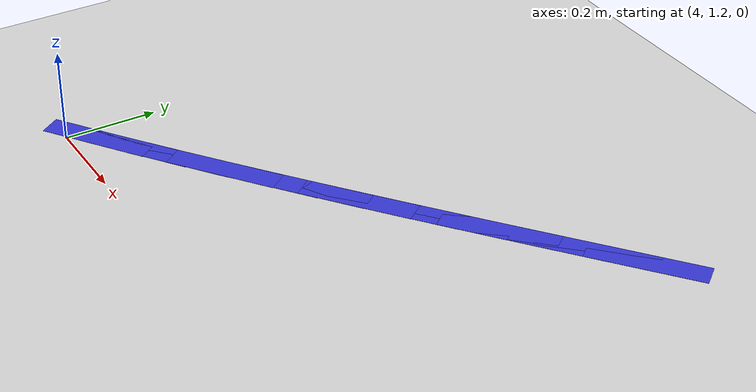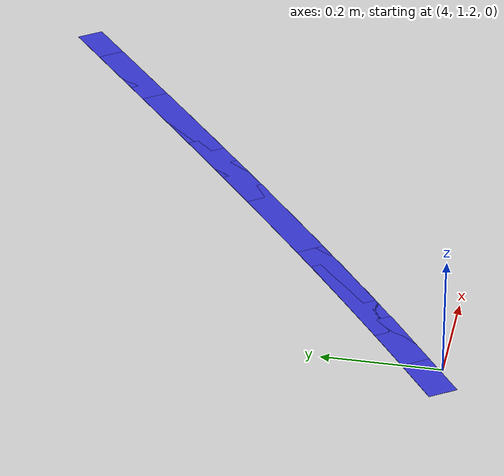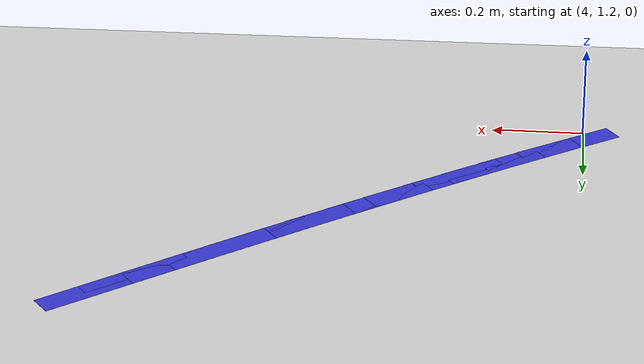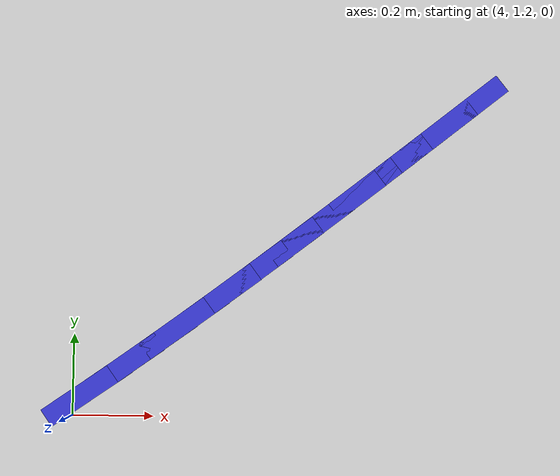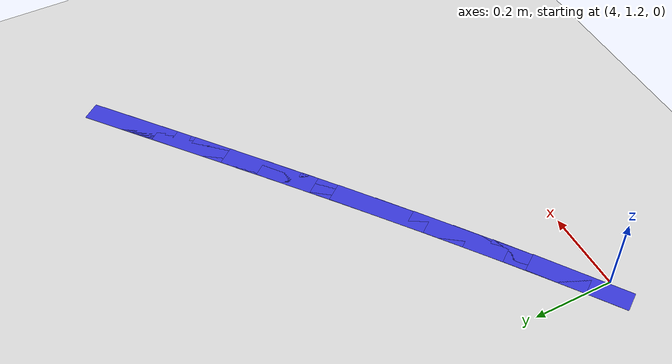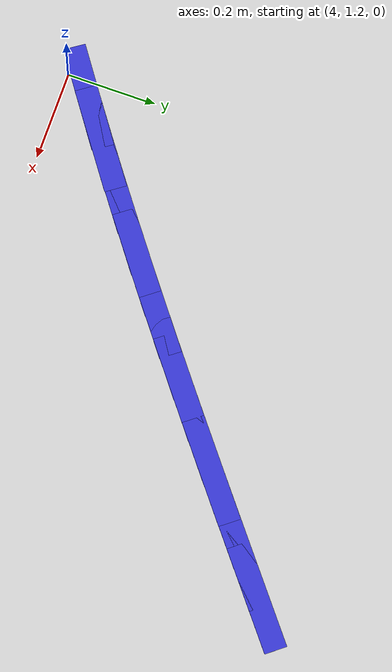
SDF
<sdf version="1.10">
 <world name="empty">
  <model name="ground_plane">
   <static>true</static>
   <link name="link">
    <collision name="collision">
     <geometry><plane><normal>0 0 1</normal><size>100 100</size></plane></geometry>
    </collision>
    <visual name="visual">
     <geometry><plane><normal>0 0 1</normal><size>100 100</size></plane></geometry>
     <material>
      <ambient>0.800000012 0.800000012 0.800000012 1</ambient>
      <diffuse>0.800000012 0.800000012 0.800000012 1</diffuse>
      <specular>0.800000012 0.800000012 0.800000012 1</specular>
     </material>
    </visual>
    <inertial>
     <mass>1</mass>
     <inertia><ixx>1</ixx><ixy>0</ixy><ixz>0</ixz><iyy>1</iyy><iyz>0</iyz><izz>1</izz></inertia>
    </inertial>
   </link>
  </model>
  <model name="unit_box_37">
   <link name="box_link">
    <collision name="box_collision">
     <geometry><box><size>0.000005 0.000005 0.000005</size></box></geometry>
    </collision>
    <visual name="box_visual">
     <geometry><box><size>0.24 0.05 0.0005</size></box></geometry>
     <material>
      <ambient>0.300000012 0.300000012 0.300000012 1</ambient>
      <diffuse>0.2 0.2 0.8 1</diffuse>
      <specular>1 1 1 1</specular>
     </material>
    </visual>
    <pose>4.032901198496547 1.2585275260512485 0 0 0 0.6085190213940487</pose>
   </link>
   <static>false</static>
  </model>
  <model name="unit_box_38">
   <link name="box_link">
    <collision name="box_collision">
     <geometry><box><size>0.000005 0.000005 0.000005</size></box></geometry>
    </collision>
    <visual name="box_visual">
     <geometry><box><size>0.24 0.05 0.0005</size></box></geometry>
     <material>
      <ambient>0.300000012 0.300000012 0.300000012 1</ambient>
      <diffuse>0.2 0.2 0.8 1</diffuse>
      <specular>1 1 1 1</specular>
     </material>
    </visual>
    <pose>4.113113586636696 1.3155697367512484 0 0 0 0.6181631887237502</pose>
   </link>
   <static>false</static>
  </model>
  <model name="unit_box_39">
   <link name="box_link">
    <collision name="box_collision">
     <geometry><box><size>0.000005 0.000005 0.000005</size></box></geometry>
    </collision>
    <visual name="box_visual">
     <geometry><box><size>0.24 0.05 0.0005</size></box></geometry>
     <material>
      <ambient>0.300000012 0.300000012 0.300000012 1</ambient>
      <diffuse>0.2 0.2 0.8 1</diffuse>
      <specular>1 1 1 1</specular>
     </material>
    </visual>
    <pose>4.192614853771879 1.3731808442552245 0 0 0 0.6270829814099572</pose>
   </link>
   <static>false</static>
  </model>
  <model name="unit_box_40">
   <link name="box_link">
    <collision name="box_collision">
     <geometry><box><size>0.000005 0.000005 0.000005</size></box></geometry>
    </collision>
    <visual name="box_visual">
     <geometry><box><size>0.24 0.05 0.0005</size></box></geometry>
     <material>
      <ambient>0.300000012 0.300000012 0.300000012 1</ambient>
      <diffuse>0.2 0.2 0.8 1</diffuse>
      <specular>1 1 1 1</specular>
     </material>
    </visual>
    <pose>4.2714668365112205 1.431311379275873 0 0 0 0.6352656642001349</pose>
   </link>
   <static>false</static>
  </model>
  <model name="unit_box_41">
   <link name="box_link">
    <collision name="box_collision">
     <geometry><box><size>0.000005 0.000005 0.000005</size></box></geometry>
    </collision>
    <visual name="box_visual">
     <geometry><box><size>0.24 0.05 0.0005</size></box></geometry>
     <material>
      <ambient>0.300000012 0.300000012 0.300000012 1</ambient>
      <diffuse>0.2 0.2 0.8 1</diffuse>
      <specular>1 1 1 1</specular>
     </material>
    </visual>
    <pose>4.349731371463848 1.4899118725258915 0 0 0 0.6426999958390573</pose>
   </link>
   <static>false</static>
  </model>
  <model name="unit_box_42">
   <link name="box_link">
    <collision name="box_collision">
     <geometry><box><size>0.000005 0.000005 0.000005</size></box></geometry>
    </collision>
    <visual name="box_visual">
     <geometry><box><size>0.24 0.05 0.0005</size></box></geometry>
     <material>
      <ambient>0.300000012 0.300000012 0.300000012 1</ambient>
      <diffuse>0.2 0.2 0.8 1</diffuse>
      <specular>1 1 1 1</specular>
     </material>
    </visual>
    <pose>4.427470295238891 1.5489328547179788 0 0 0 0.6493761393980781</pose>
   </link>
   <static>false</static>
  </model>
  <model name="unit_box_43">
   <link name="box_link">
    <collision name="box_collision">
     <geometry><box><size>0.000005 0.000005 0.000005</size></box></geometry>
    </collision>
    <visual name="box_visual">
     <geometry><box><size>0.24 0.05 0.0005</size></box></geometry>
     <material>
      <ambient>0.300000012 0.300000012 0.300000012 1</ambient>
      <diffuse>0.2 0.2 0.8 1</diffuse>
      <specular>1 1 1 1</specular>
     </material>
    </visual>
    <pose>4.504745444445475 1.608324856564832 0 0 0 0.6552855735250335</pose>
   </link>
   <static>false</static>
  </model>
  <model name="unit_box_44">
   <link name="box_link">
    <collision name="box_collision">
     <geometry><box><size>0.000005 0.000005 0.000005</size></box></geometry>
    </collision>
    <visual name="box_visual">
     <geometry><box><size>0.24 0.05 0.0005</size></box></geometry>
     <material>
      <ambient>0.300000012 0.300000012 0.300000012 1</ambient>
      <diffuse>0.2 0.2 0.8 1</diffuse>
      <specular>1 1 1 1</specular>
     </material>
    </visual>
    <pose>4.581618655692729 1.6680384087791493 0 0 0 0.6604210069645614</pose>
   </link>
   <static>false</static>
  </model>
  <model name="unit_box_45">
   <link name="box_link">
    <collision name="box_collision">
     <geometry><box><size>0.000005 0.000005 0.000005</size></box></geometry>
    </collision>
    <visual name="box_visual">
     <geometry><box><size>0.24 0.05 0.0005</size></box></geometry>
     <material>
      <ambient>0.300000012 0.300000012 0.300000012 1</ambient>
      <diffuse>0.2 0.2 0.8 1</diffuse>
      <specular>1 1 1 1</specular>
     </material>
    </visual>
    <pose>4.658151765589781 1.7280240420736286 0 0 0 0.6647762984325143</pose>
   </link>
   <static>false</static>
  </model>
  <model name="unit_box_46">
   <link name="box_link">
    <collision name="box_collision">
     <geometry><box><size>0.000005 0.000005 0.000005</size></box></geometry>
    </collision>
    <visual name="box_visual">
     <geometry><box><size>0.24 0.05 0.0005</size></box></geometry>
     <material>
      <ambient>0.300000012 0.300000012 0.300000012 1</ambient>
      <diffuse>0.2 0.2 0.8 1</diffuse>
      <specular>1 1 1 1</specular>
     </material>
    </visual>
    <pose>4.73440661074576 1.788232287160968 0 0 0 0.6683463836569298</pose>
   </link>
   <static>false</static>
  </model>
  <model name="unit_box_47">
   <link name="box_link">
    <collision name="box_collision">
     <geometry><box><size>0.000005 0.000005 0.000005</size></box></geometry>
    </collision>
    <visual name="box_visual">
     <geometry><box><size>0.24 0.05 0.0005</size></box></geometry>
     <material>
      <ambient>0.300000012 0.300000012 0.300000012 1</ambient>
      <diffuse>0.2 0.2 0.8 1</diffuse>
      <specular>1 1 1 1</specular>
     </material>
    </visual>
    <pose>4.810445027769791 1.8486136747538646 0 0 0 0.6711272111287242</pose>
   </link>
   <static>false</static>
  </model>
  <model name="unit_box_48">
   <link name="box_link">
    <collision name="box_collision">
     <geometry><box><size>0.000005 0.000005 0.000005</size></box></geometry>
    </collision>
    <visual name="box_visual">
     <geometry><box><size>0.24 0.05 0.0005</size></box></geometry>
     <material>
      <ambient>0.300000012 0.300000012 0.300000012 1</ambient>
      <diffuse>0.2 0.2 0.8 1</diffuse>
      <specular>1 1 1 1</specular>
     </material>
    </visual>
    <pose>4.886328853271002 1.9091187355650168 0 0 0 0.6731156878426229</pose>
   </link>
   <static>false</static>
  </model>
  <model name="unit_box_49">
   <link name="box_link">
    <collision name="box_collision">
     <geometry><box><size>0.000005 0.000005 0.000005</size></box></geometry>
    </collision>
    <visual name="box_visual">
     <geometry><box><size>0.24 0.05 0.0005</size></box></geometry>
     <material>
      <ambient>0.300000012 0.300000012 0.300000012 1</ambient>
      <diffuse>0.2 0.2 0.8 1</diffuse>
      <specular>1 1 1 1</specular>
     </material>
    </visual>
    <pose>4.962119923858522 1.9696980003071216 0 0 0 0.6743096360560757</pose>
   </link>
   <static>false</static>
  </model>
 </world>
</sdf>
